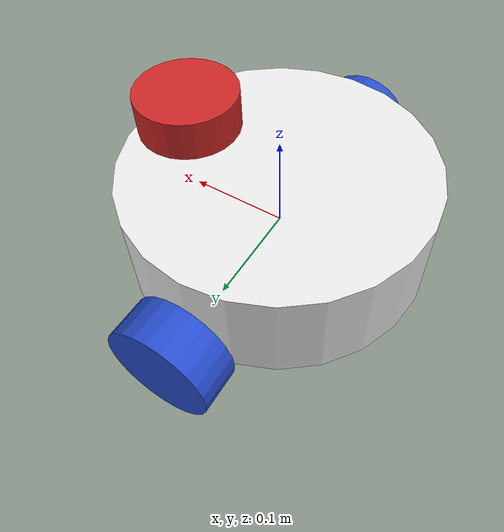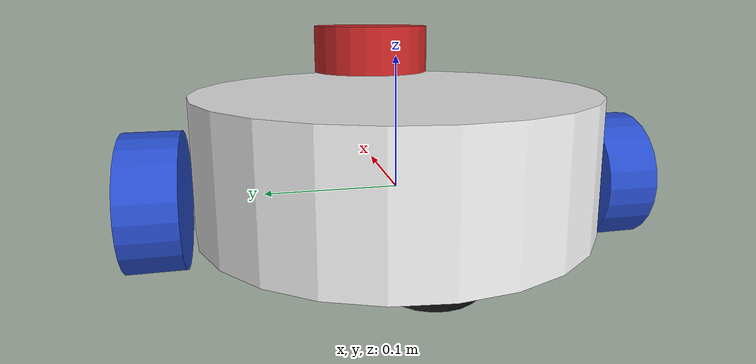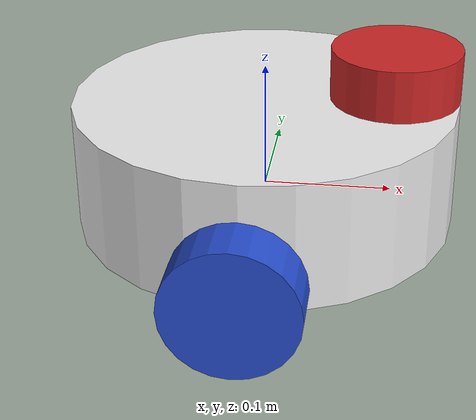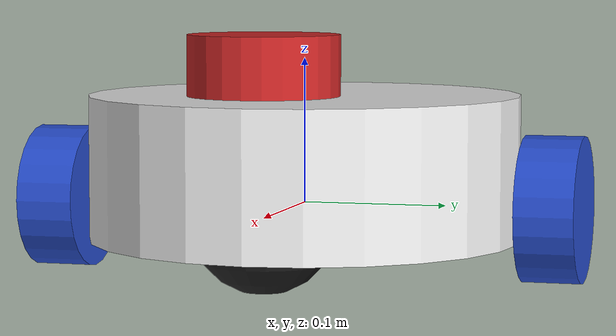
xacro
<?xml version="1.0"?>
<robot xmlns:xacro="http://www.ros.org/wiki/xacro"  name="robot">

    <!--Design-->
    <xacro:include filename="inertial_macros.xacro" />
    <xacro:include filename="robot_core.xacro" />
    <xacro:include filename="wheels.xacro" />
    <xacro:include filename="colors.xacro" />

    <!--Control-->
    <xacro:include filename="ros2_control.xacro" />

    <!--Sensors-->
    <xacro:include filename="sensors.xacro" />

    <!--Gazebo-->
    <xacro:include filename="gazebo_properties.xacro" />

</robot>

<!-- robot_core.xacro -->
<robot xmlns:xacro="http://www.ros.org/wiki/xacro">

<!--Base Link-->
<link name = 'base_link'></link>

<!--Base Footprint-->
<link name = 'base_footprint'></link>

<joint name="footprint_joint" type="fixed">
    <parent link="base_link"/>
    <child link="base_footprint"/>
    <origin xyz="0 0 0" rpy="0 0 0"/>
</joint>

<!--Chassis-->
<link name="chassis">
    <visual>
        <origin xyz="0 0 0.025" rpy="0 0 0"/>
        <geometry>
            <cylinder radius="0.15" length = "0.1"/>
        </geometry>
        <material name="white"/>
    </visual>

    <collision>
         <origin xyz="0 0 0.025" rpy="0 0 0"/>
        <geometry>
            <cylinder radius="0.15" length = "0.1"/>
        </geometry>
    </collision>

    <xacro:inertial_cylinder mass="0.5" radius="0.15" length="0.1">
        <origin xyz="0 0 0.025" rpy="0 0 0"/>
    </xacro:inertial_cylinder>

</link>
<joint name="chassis_joint" type="fixed">
    <parent link="base_link"/>
    <child link="chassis"/>
    <origin xyz="0 0 0" rpy="0 0 0"/>
</joint>

</robot>

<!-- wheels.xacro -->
<robot xmlns:xacro="http://www.ros.org/wiki/xacro">

<!--Left Wheel-->
<link name="left_wheel">
    <visual>
        <origin xyz="0 0 0" rpy="0 0 0"/>
        <geometry>
            <cylinder radius="0.05" length="0.04"/>
        </geometry>
        <material name="blue"/>
    </visual>

    <collision>
        <origin xyz="0 0 0" rpy="0 0 0"/>
        <geometry>
            <cylinder radius="0.05" length="0.04"/>
        </geometry>
    </collision>

    <xacro:inertial_cylinder mass="0.1" radius="0.05" length="0.04">
        <origin xyz="0 0 0" rpy="0 0 0"/>
    </xacro:inertial_cylinder>

</link>

<joint name="left_wheel_joint" type="continuous">
    <parent link="base_link"/>
    <child link="left_wheel"/>
    <origin xyz="0 0.175 0.0" rpy="-${pi/2} 0 0"/>
    <axis xyz="0 0 1"/>
</joint>

<!--Right Wheel-->
<link name="right_wheel">
    <visual>
        <origin xyz="0 0 0" rpy="0 0 0"/>
        <geometry>
            <cylinder radius="0.05" length="0.04"/>
        </geometry>
        <material name="blue"/>
    </visual>

    <collision>
        <origin xyz="0 0 0" rpy="0 0 0"/>
        <geometry>
            <cylinder radius="0.05" length="0.04"/>
        </geometry>
    </collision>

    <xacro:inertial_cylinder mass="0.1" radius="0.05" length="0.04">
        <origin xyz="0 0 0" rpy="0 0 0"/>
    </xacro:inertial_cylinder>

</link>

<joint name="right_wheel_joint" type="continuous">
    <parent link="base_link"/>
    <child link="right_wheel"/>
    <origin xyz="0 -0.175 0.0" rpy="${pi/2} 0 0"/>
    <axis xyz="0 0 -1"/>
</joint>

<!-- Caster Wheel Front-->
<link name="caster_wheel_f">
    <visual>
        <origin xyz="0 0 0" rpy="0 0 0"/>
        <geometry>
            <sphere radius="0.05" />
        </geometry>
        <material name="black"/>
    </visual>

    <collision>
         <origin xyz="0 0 0" rpy="0 0 0"/>
        <geometry>
            <sphere radius="0.05" />
        </geometry>
    </collision>

    <xacro:inertial_sphere mass="0.1" radius="0.05">
        <origin xyz="0 0 0" rpy="0 0 0"/>
    </xacro:inertial_sphere>
</link>

<joint name="caster_wheel_f_joint" type="fixed">
    <parent link="base_link"/>
    <child link="caster_wheel_f"/>
    <origin xyz="0.10 0 0" rpy="0 0 0"/>
</joint>

<!-- Caster Wheel Back-->
<link name="caster_wheel_b">
    <visual>
        <origin xyz="0 0 0" rpy="0 0 0"/>
        <geometry>
            <sphere radius="0.05" />
        </geometry>
        <material name="black"/>
    </visual>

    <collision>
         <origin xyz="0 0 0" rpy="0 0 0"/>
        <geometry>
            <sphere radius="0.05" />
        </geometry>
    </collision>

    <xacro:inertial_sphere mass="0.1" radius="0.05">
        <origin xyz="0 0 0" rpy="0 0 0"/>
    </xacro:inertial_sphere>
</link>

<joint name="caster_wheel_b_joint" type="fixed">
    <parent link="base_link"/>
    <child link="caster_wheel_b"/>
    <origin xyz="-0.10 0 0" rpy="0 0 0"/>
</joint>

</robot>

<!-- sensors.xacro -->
<robot xmlns:xacro="http://www.ros.org/wiki/xacro">

    <!--Lidar-->
<link name="laser_frame">
    <visual>
        <origin xyz="0 0 0" rpy="0 0 0"/>
        <geometry>
            <cylinder radius="0.05" length = "0.04"/>
        </geometry>
        <material name="red"/>
    </visual>

    <collision>
        <origin xyz="0 0 0" rpy="0 0 0"/>
        <geometry>
            <cylinder radius="0.05" length = "0.04"/>
        </geometry>
    </collision>

    <xacro:inertial_cylinder mass="0.1" radius="0.05" length="0.04">
        <origin xyz="0 0 0" rpy="0 0 0"/>
    </xacro:inertial_cylinder>
</link>

<joint name="laser_joint" type="fixed">
    <parent link="base_link"/>
    <child link="laser_frame"/>
    <origin xyz="0.10 0 0.1" rpy="0 0 0"/>
</joint>

</robot>
